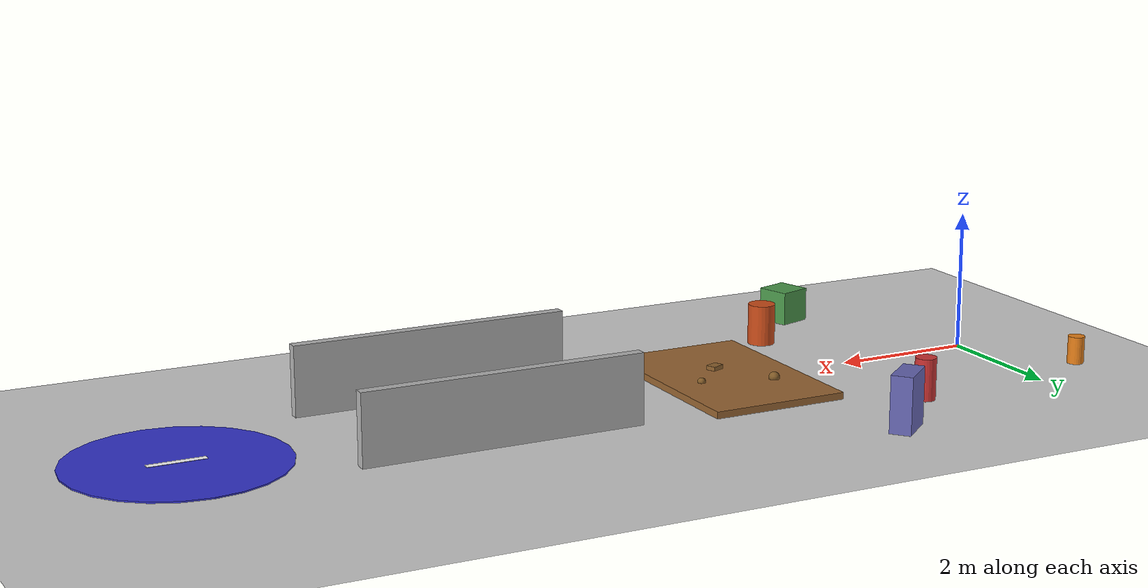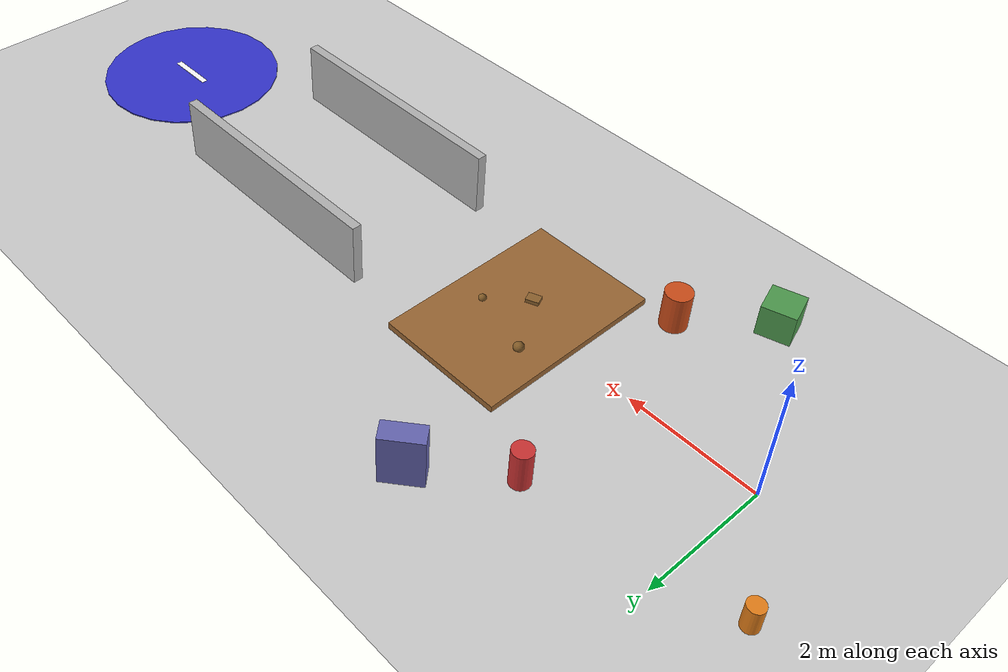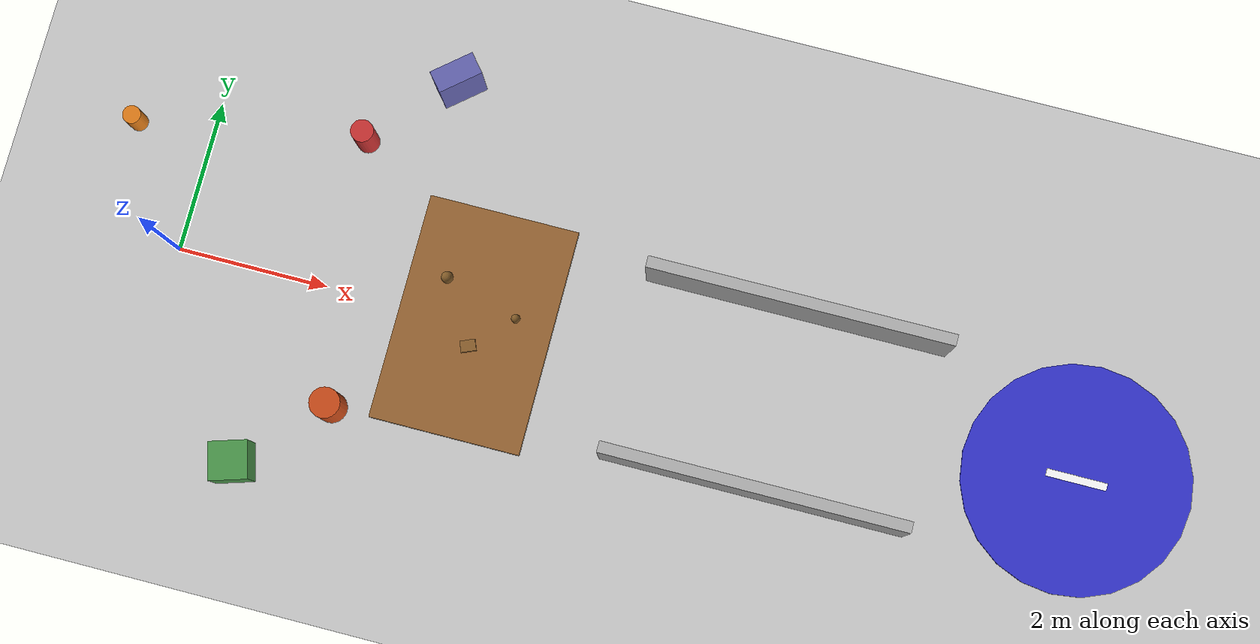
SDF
<?xml version="1.0" ?>
<sdf version="1.6">
  <world name="aeroterrabot_world">

    <!-- Physics -->
    <physics type="ode">
      <max_step_size>0.001</max_step_size>
      <real_time_factor>1.0</real_time_factor>
      <real_time_update_rate>1000</real_time_update_rate>
      <ode>
        <solver>
          <type>quick</type>
          <iters>150</iters>
          <sor>1.3</sor>
        </solver>
        <constraints>
          <cfm>0.0</cfm>
          <erp>0.2</erp>
        </constraints>
      </ode>
    </physics>

    <!-- Lighting -->
    <include>
      <uri>model://sun</uri>
    </include>

    <!-- Ground Plane (flat terrain zone) -->
    <include>
      <uri>model://ground_plane</uri>
    </include>

    <!-- ==================== ROUGH TERRAIN ZONE ==================== -->
    <model name="rough_terrain_block_1">
      <static>true</static>
      <pose>4.0 0 0.05 0 0 0</pose>
      <link name="link">
        <collision name="collision">
          <geometry><box><size>2.0 3.0 0.1</size></box></geometry>
          <surface>
            <friction><ode><mu>2.0</mu><mu2>2.0</mu2></ode></friction>
          </surface>
        </collision>
        <visual name="visual">
          <geometry><box><size>2.0 3.0 0.1</size></box></geometry>
          <material>
            <ambient>0.6 0.4 0.2 1</ambient>
            <diffuse>0.6 0.4 0.2 1</diffuse>
          </material>
        </visual>
      </link>
    </model>

    <!-- Rough terrain bumps -->
    <model name="bump_1">
      <static>true</static>
      <pose>3.5 0.5 0.12 0 0 0</pose>
      <link name="link">
        <collision name="collision"><geometry><sphere><radius>0.08</radius></sphere></geometry></collision>
        <visual name="visual"><geometry><sphere><radius>0.08</radius></sphere></geometry>
          <material><ambient>0.5 0.35 0.15 1</ambient><diffuse>0.5 0.35 0.15 1</diffuse></material>
        </visual>
      </link>
    </model>

    <model name="bump_2">
      <static>true</static>
      <pose>4.0 -0.3 0.13 0 0 0.4</pose>
      <link name="link">
        <collision name="collision"><geometry><box><size>0.2 0.15 0.06</size></box></geometry></collision>
        <visual name="visual"><geometry><box><size>0.2 0.15 0.06</size></box></geometry>
          <material><ambient>0.55 0.38 0.18 1</ambient><diffuse>0.55 0.38 0.18 1</diffuse></material>
        </visual>
      </link>
    </model>

    <model name="bump_3">
      <static>true</static>
      <pose>4.5 0.2 0.11 0 0 0</pose>
      <link name="link">
        <collision name="collision"><geometry><sphere><radius>0.06</radius></sphere></geometry></collision>
        <visual name="visual"><geometry><sphere><radius>0.06</radius></sphere></geometry>
          <material><ambient>0.5 0.35 0.15 1</ambient><diffuse>0.5 0.35 0.15 1</diffuse></material>
        </visual>
      </link>
    </model>

    <!-- ==================== NAVIGATION CORRIDOR ==================== -->
    <model name="corridor_wall_left">
      <static>true</static>
      <pose>8.0 1.2 0.5 0 0 0</pose>
      <link name="link">
        <collision name="collision"><geometry><box><size>4.0 0.15 1.0</size></box></geometry></collision>
        <visual name="visual"><geometry><box><size>4.0 0.15 1.0</size></box></geometry>
          <material><ambient>0.7 0.7 0.7 1</ambient><diffuse>0.7 0.7 0.7 1</diffuse></material>
        </visual>
      </link>
    </model>

    <model name="corridor_wall_right">
      <static>true</static>
      <pose>8.0 -1.2 0.5 0 0 0</pose>
      <link name="link">
        <collision name="collision"><geometry><box><size>4.0 0.15 1.0</size></box></geometry></collision>
        <visual name="visual"><geometry><box><size>4.0 0.15 1.0</size></box></geometry>
          <material><ambient>0.7 0.7 0.7 1</ambient><diffuse>0.7 0.7 0.7 1</diffuse></material>
        </visual>
      </link>
    </model>

    <!-- ==================== LANDING PAD ==================== -->
    <model name="landing_pad">
      <static>true</static>
      <pose>12.0 0 0.01 0 0 0</pose>
      <link name="link">
        <collision name="collision"><geometry><cylinder><radius>1.5</radius><length>0.02</length></cylinder></geometry></collision>
        <visual name="visual"><geometry><cylinder><radius>1.5</radius><length>0.02</length></cylinder></geometry>
          <material><ambient>0.2 0.2 0.8 1</ambient><diffuse>0.2 0.2 0.8 1</diffuse></material>
        </visual>
      </link>
    </model>

    <!-- Landing pad H marker -->
    <model name="landing_h_marker">
      <static>true</static>
      <pose>12.0 0 0.025 0 0 0</pose>
      <link name="link">
        <visual name="visual"><geometry><box><size>0.8 0.1 0.005</size></box></geometry>
          <material><ambient>1.0 1.0 1.0 1</ambient><diffuse>1.0 1.0 1.0 1</diffuse></material>
        </visual>
      </link>
    </model>

    <!-- ==================== OBSTACLE REGION ==================== -->
    <model name="obstacle_cylinder_1">
      <static>true</static>
      <pose>2.0 2.0 0.3 0 0 0</pose>
      <link name="link">
        <collision name="collision"><geometry><cylinder><radius>0.15</radius><length>0.6</length></cylinder></geometry></collision>
        <visual name="visual"><geometry><cylinder><radius>0.15</radius><length>0.6</length></cylinder></geometry>
          <material><ambient>0.8 0.2 0.2 1</ambient><diffuse>0.8 0.2 0.2 1</diffuse></material>
        </visual>
      </link>
    </model>

    <model name="obstacle_cylinder_2">
      <static>true</static>
      <pose>2.5 -1.5 0.3 0 0 0</pose>
      <link name="link">
        <collision name="collision"><geometry><cylinder><radius>0.2</radius><length>0.6</length></cylinder></geometry></collision>
        <visual name="visual"><geometry><cylinder><radius>0.2</radius><length>0.6</length></cylinder></geometry>
          <material><ambient>0.8 0.3 0.1 1</ambient><diffuse>0.8 0.3 0.1 1</diffuse></material>
        </visual>
      </link>
    </model>

    <model name="obstacle_box_1">
      <static>true</static>
      <pose>1.5 -2.5 0.25 0 0 0.3</pose>
      <link name="link">
        <collision name="collision"><geometry><box><size>0.5 0.5 0.5</size></box></geometry></collision>
        <visual name="visual"><geometry><box><size>0.5 0.5 0.5</size></box></geometry>
          <material><ambient>0.3 0.6 0.3 1</ambient><diffuse>0.3 0.6 0.3 1</diffuse></material>
        </visual>
      </link>
    </model>

    <model name="obstacle_box_2">
      <static>true</static>
      <pose>3.0 3.0 0.4 0 0 0.7</pose>
      <link name="link">
        <collision name="collision"><geometry><box><size>0.6 0.3 0.8</size></box></geometry></collision>
        <visual name="visual"><geometry><box><size>0.6 0.3 0.8</size></box></geometry>
          <material><ambient>0.4 0.4 0.7 1</ambient><diffuse>0.4 0.4 0.7 1</diffuse></material>
        </visual>
      </link>
    </model>

    <model name="obstacle_cylinder_3">
      <static>true</static>
      <pose>-1.0 1.5 0.2 0 0 0</pose>
      <link name="link">
        <collision name="collision"><geometry><cylinder><radius>0.12</radius><length>0.4</length></cylinder></geometry></collision>
        <visual name="visual"><geometry><cylinder><radius>0.12</radius><length>0.4</length></cylinder></geometry>
          <material><ambient>0.9 0.5 0.1 1</ambient><diffuse>0.9 0.5 0.1 1</diffuse></material>
        </visual>
      </link>
    </model>

  </world>
</sdf>
